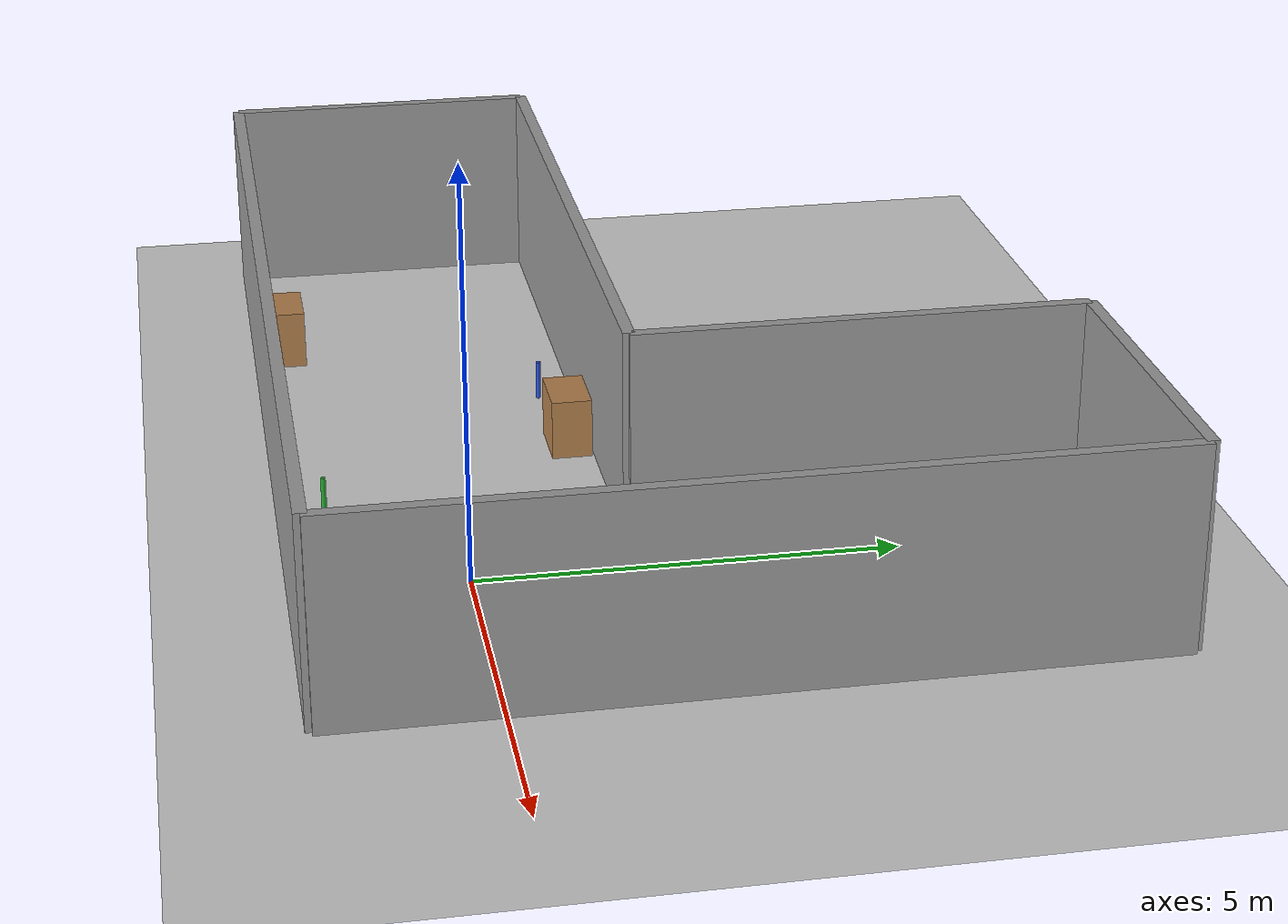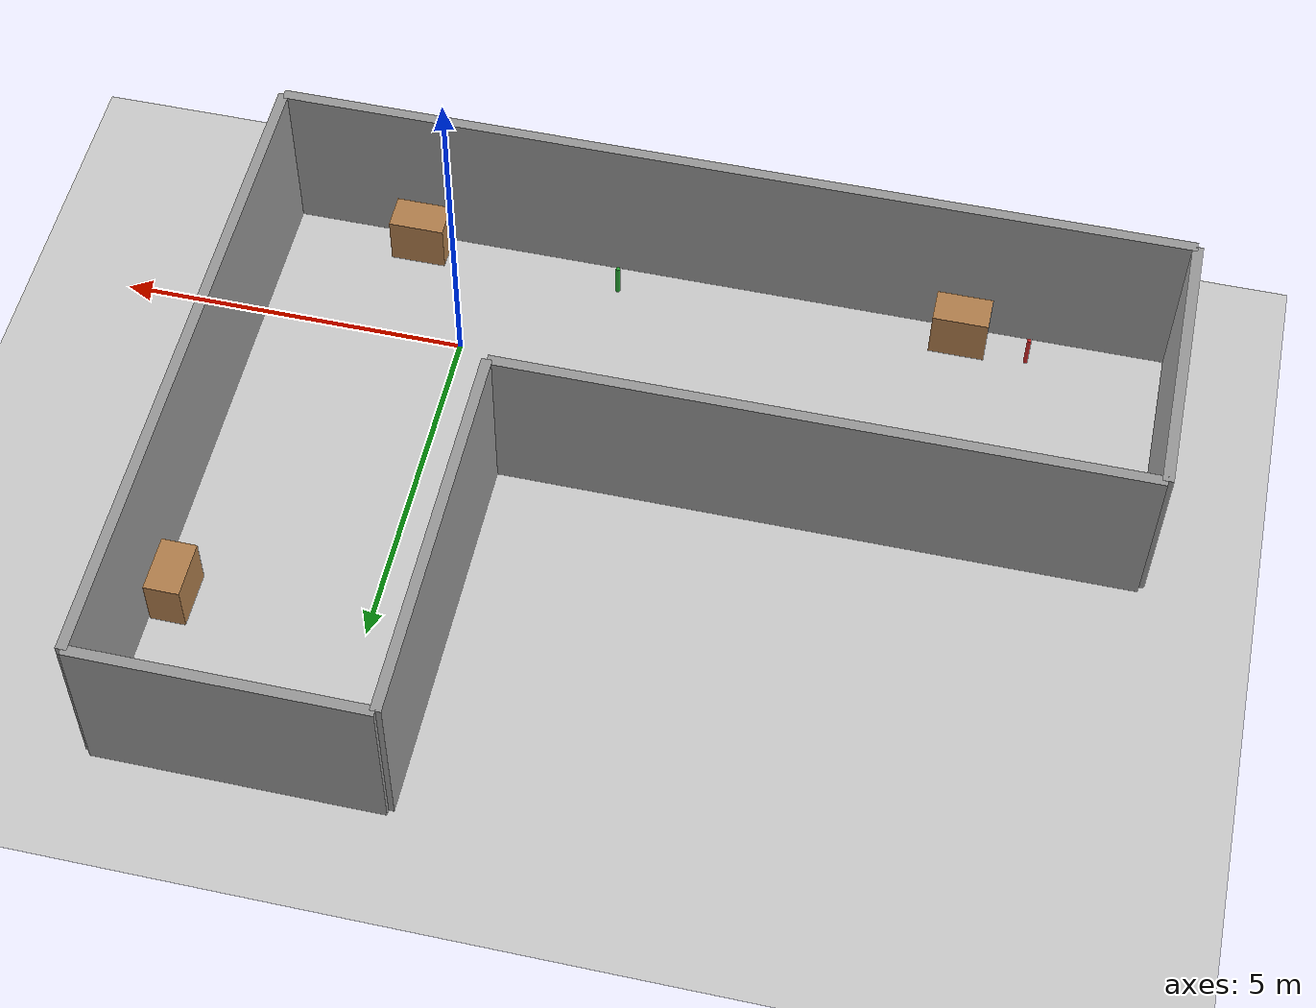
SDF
<?xml version="1.0" ?>
<sdf version="1.6">
  <world name="corridor_world">
    <include>
      <uri>model://sun</uri>
    </include>
    <include>
      <uri>model://ground_plane</uri>
    </include>
    <include>
      <uri>model://corridor</uri>
    </include>

    <model name='cyl_1'>
      <pose>-8 -1.5 0.25 0 0 0</pose>
      <static>true</static>
      <link name='link'>
        <collision name='collision'>
          <geometry><cylinder><radius>0.03</radius><length>0.5</length></cylinder></geometry>
        </collision>
        <visual name='visual'>
          <geometry><cylinder><radius>0.03</radius><length>0.5</length></cylinder></geometry>
          <material>
            <script>
              <uri>file://media/materials/scripts/gazebo.material</uri>
              <name>Gazebo/Red</name>
            </script>
          </material>
        </visual>
      </link>
    </model>

    <model name='cyl_2'>
      <pose>-5 1.5 0.25 0 0 0</pose>
      <static>true</static>
      <link name='link'>
        <collision name='collision'>
          <geometry><cylinder><radius>0.03</radius><length>0.5</length></cylinder></geometry>
        </collision>
        <visual name='visual'>
          <geometry><cylinder><radius>0.03</radius><length>0.5</length></cylinder></geometry>
          <material>
            <script>
              <uri>file://media/materials/scripts/gazebo.material</uri>
              <name>Gazebo/Blue</name>
            </script>
          </material>
        </visual>
      </link>
    </model>

    <model name='cyl_3'>
      <pose>-2 -1.5 0.25 0 0 0</pose>
      <static>true</static>
      <link name='link'>
        <collision name='collision'>
          <geometry><cylinder><radius>0.03</radius><length>0.5</length></cylinder></geometry>
        </collision>
        <visual name='visual'>
          <geometry><cylinder><radius>0.03</radius><length>0.5</length></cylinder></geometry>
          <material>
            <script>
              <uri>file://media/materials/scripts/gazebo.material</uri>
              <name>Gazebo/Green</name>
            </script>
          </material>
        </visual>
      </link>
    </model>

    <model name='cyl_4'>
      <pose>-0.5 3 0.25 0 0 0</pose>
      <static>true</static>
      <link name='link'>
        <collision name='collision'>
          <geometry><cylinder><radius>0.03</radius><length>0.5</length></cylinder></geometry>
        </collision>
        <visual name='visual'>
          <geometry><cylinder><radius>0.03</radius><length>0.5</length></cylinder></geometry>
          <material>
            <script>
              <uri>file://media/materials/scripts/gazebo.material</uri>
              <name>Gazebo/Yellow</name>
            </script>
          </material>
        </visual>
      </link>
    </model>

    <!-- Exposes /set_entity_state so a ROS node can teleport models at runtime. -->
    <plugin name="gazebo_ros_state" filename="libgazebo_ros_state.so">
      <ros>
        <namespace>/</namespace>
      </ros>
      <update_rate>200.0</update_rate>
    </plugin>
  </world>
</sdf>

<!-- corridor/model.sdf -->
<sdf version='1.6'>
  <model name='corridor'>
    <pose frame=''>0 0 0 0 0 0</pose>

    <!-- Wall_0 — south wall of horizontal leg: y=-2, x in [-10, 3], length 13 -->
    <link name='Wall_0'>
      <collision name='Wall_0_Collision'>
        <geometry>
          <box><size>13 0.15 2.5</size></box>
        </geometry>
        <pose frame=''>0 0 1.25 0 -0 0</pose>
      </collision>
      <visual name='Wall_0_Visual'>
        <pose frame=''>0 0 1.25 0 -0 0</pose>
        <geometry>
          <box><size>13 0.15 2.5</size></box>
        </geometry>
        <material>
          <script>
            <uri>file://media/materials/scripts/gazebo.material</uri>
            <name>Gazebo/Grey</name>
          </script>
          <ambient>1 1 1 1</ambient>
        </material>
      </visual>
      <pose frame=''>-3.5 -2 0 0 -0 0</pose>
    </link>

    <!-- Wall_1 — east wall (full L height): x=+3, y in [-2, 7.5], length 9.5 -->
    <link name='Wall_1'>
      <collision name='Wall_1_Collision'>
        <geometry>
          <box><size>9.5 0.15 2.5</size></box>
        </geometry>
        <pose frame=''>0 0 1.25 0 -0 0</pose>
      </collision>
      <visual name='Wall_1_Visual'>
        <pose frame=''>0 0 1.25 0 -0 0</pose>
        <geometry>
          <box><size>9.5 0.15 2.5</size></box>
        </geometry>
        <material>
          <script>
            <uri>file://media/materials/scripts/gazebo.material</uri>
            <name>Gazebo/Grey</name>
          </script>
          <ambient>1 1 1 1</ambient>
        </material>
      </visual>
      <pose frame=''>3 2.75 0 0 0 1.5708</pose>
    </link>

    <!-- Wall_2 — top of vertical leg: y=+7.5, x in [-1, 3], length 4 -->
    <link name='Wall_2'>
      <collision name='Wall_2_Collision'>
        <geometry>
          <box><size>4 0.15 2.5</size></box>
        </geometry>
        <pose frame=''>0 0 1.25 0 -0 0</pose>
      </collision>
      <visual name='Wall_2_Visual'>
        <pose frame=''>0 0 1.25 0 -0 0</pose>
        <geometry>
          <box><size>4 0.15 2.5</size></box>
        </geometry>
        <material>
          <script>
            <uri>file://media/materials/scripts/gazebo.material</uri>
            <name>Gazebo/Grey</name>
          </script>
          <ambient>1 1 1 1</ambient>
        </material>
      </visual>
      <pose frame=''>1 7.5 0 0 -0 0</pose>
    </link>

    <!-- Wall_3 — inside west wall of vertical leg: x=-1, y in [2, 7.5], length 5.5 -->
    <link name='Wall_3'>
      <collision name='Wall_3_Collision'>
        <geometry>
          <box><size>5.5 0.15 2.5</size></box>
        </geometry>
        <pose frame=''>0 0 1.25 0 -0 0</pose>
      </collision>
      <visual name='Wall_3_Visual'>
        <pose frame=''>0 0 1.25 0 -0 0</pose>
        <geometry>
          <box><size>5.5 0.15 2.5</size></box>
        </geometry>
        <material>
          <script>
            <uri>file://media/materials/scripts/gazebo.material</uri>
            <name>Gazebo/Grey</name>
          </script>
          <ambient>1 1 1 1</ambient>
        </material>
      </visual>
      <pose frame=''>-1 4.75 0 0 0 1.5708</pose>
    </link>

    <!-- Wall_4 — north wall of horizontal leg (west of vertical leg): y=+2, x in [-10, -1], length 9 -->
    <link name='Wall_4'>
      <collision name='Wall_4_Collision'>
        <geometry>
          <box><size>9 0.15 2.5</size></box>
        </geometry>
        <pose frame=''>0 0 1.25 0 -0 0</pose>
      </collision>
      <visual name='Wall_4_Visual'>
        <pose frame=''>0 0 1.25 0 -0 0</pose>
        <geometry>
          <box><size>9 0.15 2.5</size></box>
        </geometry>
        <material>
          <script>
            <uri>file://media/materials/scripts/gazebo.material</uri>
            <name>Gazebo/Grey</name>
          </script>
          <ambient>1 1 1 1</ambient>
        </material>
      </visual>
      <pose frame=''>-5.5 2 0 0 -0 0</pose>
    </link>

    <!-- Wall_5 — west wall of horizontal leg: x=-10, y in [-2, 2], length 4 -->
    <link name='Wall_5'>
      <collision name='Wall_5_Collision'>
        <geometry>
          <box><size>4 0.15 2.5</size></box>
        </geometry>
        <pose frame=''>0 0 1.25 0 -0 0</pose>
      </collision>
      <visual name='Wall_5_Visual'>
        <pose frame=''>0 0 1.25 0 -0 0</pose>
        <geometry>
          <box><size>4 0.15 2.5</size></box>
        </geometry>
        <material>
          <script>
            <uri>file://media/materials/scripts/gazebo.material</uri>
            <name>Gazebo/Grey</name>
          </script>
          <ambient>1 1 1 1</ambient>
        </material>
      </visual>
      <pose frame=''>-10 0 0 0 0 1.5708</pose>
    </link>

    <!-- Desk_1 — against south wall in horizontal leg, x=-7 -->
    <link name='Desk_1'>
      <collision name='Desk_1_Collision'>
        <geometry>
          <box><size>0.8 0.5 0.75</size></box>
        </geometry>
        <pose frame=''>0 0 0.375 0 0 0</pose>
      </collision>
      <visual name='Desk_1_Visual'>
        <pose frame=''>0 0 0.375 0 0 0</pose>
        <geometry>
          <box><size>0.8 0.5 0.75</size></box>
        </geometry>
        <material>
          <script>
            <uri>file://media/materials/scripts/gazebo.material</uri>
            <name>Gazebo/Wood</name>
          </script>
          <ambient>1 1 1 1</ambient>
        </material>
      </visual>
      <pose frame=''>-7 -1.65 0 0 0 0</pose>
    </link>

    <!-- Desk_2 — against north wall in horizontal leg, x=-3.5 -->
    <link name='Desk_2'>
      <collision name='Desk_2_Collision'>
        <geometry>
          <box><size>0.8 0.5 0.75</size></box>
        </geometry>
        <pose frame=''>0 0 0.375 0 0 0</pose>
      </collision>
      <visual name='Desk_2_Visual'>
        <pose frame=''>0 0 0.375 0 0 0</pose>
        <geometry>
          <box><size>0.8 0.5 0.75</size></box>
        </geometry>
        <material>
          <script>
            <uri>file://media/materials/scripts/gazebo.material</uri>
            <name>Gazebo/Wood</name>
          </script>
          <ambient>1 1 1 1</ambient>
        </material>
      </visual>
      <pose frame=''>-3.5 1.65 0 0 0 0</pose>
    </link>

    <!-- Desk_3 — against south wall near the corner, x=1 -->
    <link name='Desk_3'>
      <collision name='Desk_3_Collision'>
        <geometry>
          <box><size>0.8 0.5 0.75</size></box>
        </geometry>
        <pose frame=''>0 0 0.375 0 0 0</pose>
      </collision>
      <visual name='Desk_3_Visual'>
        <pose frame=''>0 0 0.375 0 0 0</pose>
        <geometry>
          <box><size>0.8 0.5 0.75</size></box>
        </geometry>
        <material>
          <script>
            <uri>file://media/materials/scripts/gazebo.material</uri>
            <name>Gazebo/Wood</name>
          </script>
          <ambient>1 1 1 1</ambient>
        </material>
      </visual>
      <pose frame=''>1 -1.65 0 0 0 0</pose>
    </link>

    <!-- Desk_4 — against east wall in vertical leg, y=5 (rotated 90°) -->
    <link name='Desk_4'>
      <collision name='Desk_4_Collision'>
        <geometry>
          <box><size>0.5 0.8 0.75</size></box>
        </geometry>
        <pose frame=''>0 0 0.375 0 0 0</pose>
      </collision>
      <visual name='Desk_4_Visual'>
        <pose frame=''>0 0 0.375 0 0 0</pose>
        <geometry>
          <box><size>0.5 0.8 0.75</size></box>
        </geometry>
        <material>
          <script>
            <uri>file://media/materials/scripts/gazebo.material</uri>
            <name>Gazebo/Wood</name>
          </script>
          <ambient>1 1 1 1</ambient>
        </material>
      </visual>
      <pose frame=''>2.65 5 0 0 0 0</pose>
    </link>

    <static>1</static>
  </model>
</sdf>
